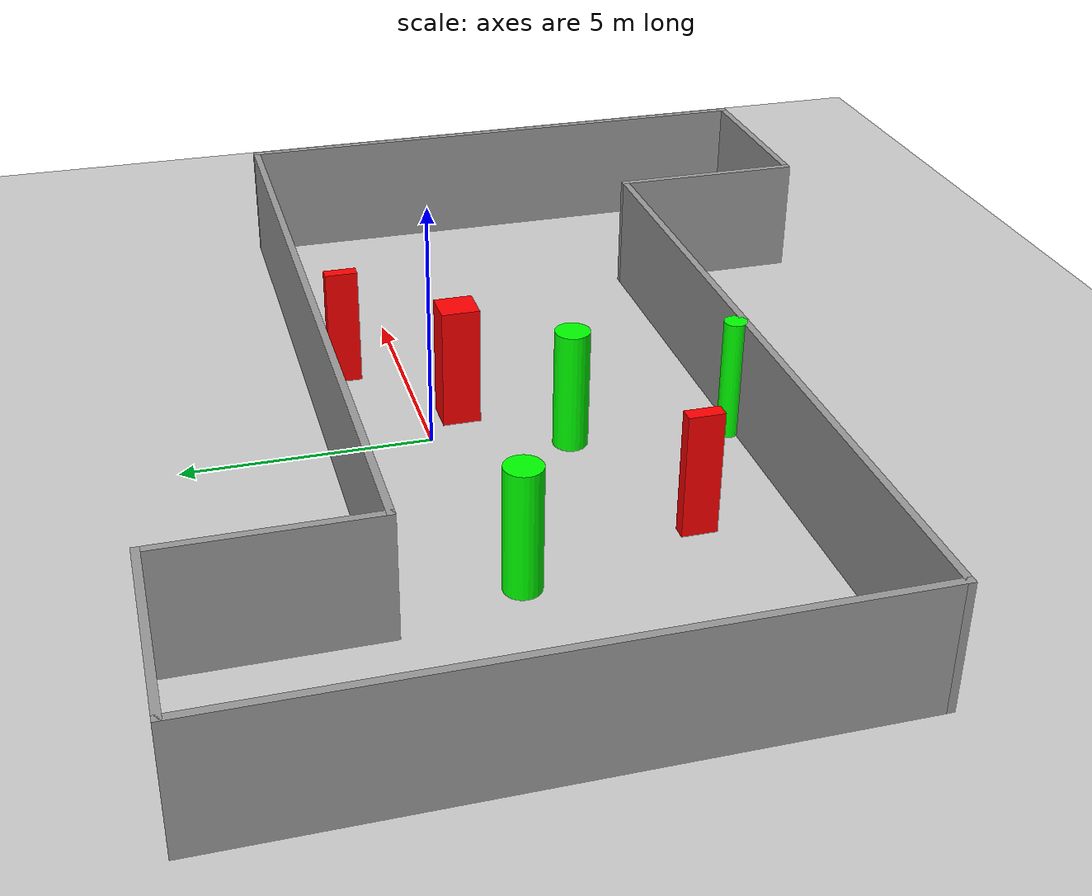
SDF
<sdf version="1.7">
 <world name="default">
  <light name="sun" type="directional">
   <pose>0 0 10 0 -0 0</pose>
   <diffuse>0.8 0.8 0.8 1</diffuse>
   <specular>0.2 0.2 0.2 1</specular>
   <attenuation>
    <range>1000</range>
    <constant>0.9</constant>
    <linear>0.01</linear>
    <quadratic>0.001</quadratic>
   </attenuation>
   <direction>-0.5 0.1 -0.9</direction>
   <spot><inner_angle>0</inner_angle><outer_angle>0</outer_angle><falloff>0</falloff></spot>
  </light>
  <model name="ground_plane">
   <static>1</static>
   <link name="link">
    <collision name="collision">
     <geometry><plane><normal>0 0 1</normal><size>100 100</size></plane></geometry>
     <surface>
      <contact><collide_bitmask>65535</collide_bitmask></contact>
      <friction><ode><mu>100</mu><mu2>50</mu2></ode></friction>
     </surface>
    </collision>
    <visual name="visual">
     <cast_shadows>0</cast_shadows>
     <geometry><plane><normal>0 0 1</normal><size>100 100</size></plane></geometry>
     <material>
      <script><uri>file://media/materials/scripts/gazebo.material</uri><name>Gazebo/Grey</name></script>
     </material>
    </visual>
   </link>
  </model>
  <gravity>0 0 -9.8</gravity>
  <magnetic_field>6e-06 2.3e-05 -4.2e-05</magnetic_field>
  <atmosphere type="adiabatic"/>
  <physics type="ode">
   <max_step_size>0.001</max_step_size>
   <real_time_factor>1</real_time_factor>
   <real_time_update_rate>1000</real_time_update_rate>
  </physics>
  <scene><ambient>0.4 0.4 0.4 1</ambient><background>0.7 0.7 0.7 1</background><shadows>1</shadows></scene>
  <spherical_coordinates>
   <surface_model>EARTH_WGS84</surface_model>
   <latitude_deg>0</latitude_deg>
   <longitude_deg>0</longitude_deg>
   <elevation>0</elevation>
   <heading_deg>0</heading_deg>
  </spherical_coordinates>
  <model name="my_base_walls">
   <link name="Wall_13">
    <collision name="Wall_13_Collision">
     <geometry><box><size>12.15 0.15 2.5</size></box></geometry>
     <pose>0 0 1.25 0 -0 0</pose>
    </collision>
    <visual name="Wall_13_Visual">
     <pose>0 0 1.25 0 -0 0</pose>
     <geometry><box><size>12.15 0.15 2.5</size></box></geometry>
     <material>
      <script><uri>file://media/materials/scripts/gazebo.material</uri><name>Gazebo/Grey</name></script>
      <ambient>1 1 1 1</ambient>
     </material>
     <meta><layer>0</layer></meta>
    </visual>
    <pose>10 -2 0 0 -0 1.5708</pose>
   </link>
   <link name="Wall_15">
    <collision name="Wall_15_Collision">
     <geometry><box><size>16.15 0.15 2.5</size></box></geometry>
     <pose>0 0 1.25 0 -0 0</pose>
    </collision>
    <visual name="Wall_15_Visual">
     <pose>0 0 1.25 0 -0 0</pose>
     <geometry><box><size>16.15 0.15 2.5</size></box></geometry>
     <material>
      <script><uri>file://media/materials/scripts/gazebo.material</uri><name>Gazebo/Grey</name></script>
      <ambient>1 1 1 1</ambient>
     </material>
     <meta><layer>0</layer></meta>
    </visual>
    <pose>2 4 0 0 -0 3.14159</pose>
   </link>
   <link name="Wall_17">
    <collision name="Wall_17_Collision">
     <geometry><box><size>4.15 0.15 2.5</size></box></geometry>
     <pose>0 0 1.25 0 -0 0</pose>
    </collision>
    <visual name="Wall_17_Visual">
     <pose>0 0 1.25 0 -0 0</pose>
     <geometry><box><size>4.15 0.15 2.5</size></box></geometry>
     <material>
      <script><uri>file://media/materials/scripts/gazebo.material</uri><name>Gazebo/Grey</name></script>
      <ambient>1 1 1 1</ambient>
     </material>
     <meta><layer>0</layer></meta>
    </visual>
    <pose>6 -6 0 0 -0 -1.5708</pose>
   </link>
   <link name="Wall_19">
    <collision name="Wall_19_Collision">
     <geometry><box><size>12.15 0.15 2.5</size></box></geometry>
     <pose>0 0 1.25 0 -0 0</pose>
    </collision>
    <visual name="Wall_19_Visual">
     <pose>0 0 1.25 0 -0 0</pose>
     <geometry><box><size>12.15 0.15 2.5</size></box></geometry>
     <material>
      <script><uri>file://media/materials/scripts/gazebo.material</uri><name>Gazebo/Grey</name></script>
      <ambient>1 1 1 1</ambient>
     </material>
     <meta><layer>0</layer></meta>
    </visual>
    <pose>-10 2 0 0 -0 1.5708</pose>
   </link>
   <link name="Wall_21">
    <collision name="Wall_21_Collision">
     <geometry><box><size>4.15 0.15 2.5</size></box></geometry>
     <pose>0 0 1.25 0 -0 0</pose>
    </collision>
    <visual name="Wall_21_Visual">
     <pose>0 0 1.25 0 -0 0</pose>
     <geometry><box><size>4.15 0.15 2.5</size></box></geometry>
     <material>
      <script><uri>file://media/materials/scripts/gazebo.material</uri><name>Gazebo/Grey</name></script>
      <ambient>1 1 1 1</ambient>
     </material>
     <meta><layer>0</layer></meta>
    </visual>
    <pose>-8 8 0 0 -0 0</pose>
   </link>
   <link name="Wall_23">
    <collision name="Wall_23_Collision">
     <geometry><box><size>4.15 0.15 2.5</size></box></geometry>
     <pose>0 0 1.25 0 -0 0</pose>
    </collision>
    <visual name="Wall_23_Visual">
     <pose>0 0 1.25 0 -0 0</pose>
     <geometry><box><size>4.15 0.15 2.5</size></box></geometry>
     <material>
      <script><uri>file://media/materials/scripts/gazebo.material</uri><name>Gazebo/Grey</name></script>
      <ambient>1 1 1 1</ambient>
     </material>
     <meta><layer>0</layer></meta>
    </visual>
    <pose>-6 6 0 0 -0 -1.5708</pose>
   </link>
   <link name="Wall_25">
    <collision name="Wall_25_Collision">
     <geometry><box><size>4.15 0.15 2.5</size></box></geometry>
     <pose>0 0 1.25 0 -0 0</pose>
    </collision>
    <visual name="Wall_25_Visual">
     <pose>0 0 1.25 0 -0 0</pose>
     <geometry><box><size>4.15 0.15 2.5</size></box></geometry>
     <material>
      <script><uri>file://media/materials/scripts/gazebo.material</uri><name>Gazebo/Grey</name></script>
      <ambient>1 1 1 1</ambient>
     </material>
     <meta><layer>0</layer></meta>
    </visual>
    <pose>8 -8 0 0 -0 0</pose>
   </link>
   <link name="Wall_9">
    <collision name="Wall_9_Collision">
     <geometry><box><size>16.15 0.15 2.5</size></box></geometry>
     <pose>0 0 1.25 0 -0 0</pose>
    </collision>
    <visual name="Wall_9_Visual">
     <pose>0 0 1.25 0 -0 0</pose>
     <geometry><box><size>16.15 0.15 2.5</size></box></geometry>
     <material>
      <script><uri>file://media/materials/scripts/gazebo.material</uri><name>Gazebo/Grey</name></script>
      <ambient>1 1 1 1</ambient>
     </material>
     <meta><layer>0</layer></meta>
    </visual>
    <pose>-2 -4 0 0 -0 3.14159</pose>
   </link>
   <static>1</static>
   <pose>-0 -2 0 0 -0 0</pose>
  </model>
  <model name="cylinder1">
   <static>1</static>
   <link name="link">
    <inertial>
     <mass>1</mass>
     <inertia><ixx>0.5</ixx><ixy>0</ixy><ixz>0</ixz><iyy>0.5</iyy><iyz>0</iyz><izz>1</izz></inertia>
    </inertial>
    <collision name="collision">
     <geometry><cylinder><radius>0.36278769786888454</radius><length>2.5</length></cylinder></geometry>
    </collision>
    <visual name="visual">
     <geometry><cylinder><radius>0.36278769786888454</radius><length>2.5</length></cylinder></geometry>
     <material>
      <ambient>0 1 0 1</ambient>
      <diffuse>0 1 0 1</diffuse>
      <specular>0.1 0.1 0.1 1</specular>
      <emissive>0 0 0 0</emissive>
     </material>
    </visual>
   </link>
   <pose>-5.215206454562142 -0.4140963735138037 1.25 0 0 0</pose>
  </model>
  <model name="cylinder2">
   <static>1</static>
   <link name="link">
    <inertial>
     <mass>1</mass>
     <inertia><ixx>0.5</ixx><ixy>0</ixy><ixz>0</ixz><iyy>0.5</iyy><iyz>0</iyz><izz>1</izz></inertia>
    </inertial>
    <collision name="collision">
     <geometry><cylinder><radius>0.3515348773333252</radius><length>2.5</length></cylinder></geometry>
    </collision>
    <visual name="visual">
     <geometry><cylinder><radius>0.3515348773333252</radius><length>2.5</length></cylinder></geometry>
     <material>
      <ambient>0 1 0 1</ambient>
      <diffuse>0 1 0 1</diffuse>
      <specular>0.1 0.1 0.1 1</specular>
      <emissive>0 0 0 0</emissive>
     </material>
    </visual>
   </link>
   <pose>-0.7835238163182758 -2.633877371561538 1.25 0 0 0</pose>
  </model>
  <model name="cylinder3">
   <static>1</static>
   <link name="link">
    <inertial>
     <mass>1</mass>
     <inertia><ixx>0.5</ixx><ixy>0</ixy><ixz>0</ixz><iyy>0.5</iyy><iyz>0</iyz><izz>1</izz></inertia>
    </inertial>
    <collision name="collision">
     <geometry><cylinder><radius>0.23045875147595762</radius><length>2.5</length></cylinder></geometry>
    </collision>
    <visual name="visual">
     <geometry><cylinder><radius>0.23045875147595762</radius><length>2.5</length></cylinder></geometry>
     <material>
      <ambient>0 1 0 1</ambient>
      <diffuse>0 1 0 1</diffuse>
      <specular>0.1 0.1 0.1 1</specular>
      <emissive>0 0 0 0</emissive>
     </material>
    </visual>
   </link>
   <pose>-1.2086406735091817 -5.815087400682612 1.25 0 0 0</pose>
  </model>
  <model name="box1">
   <static>1</static>
   <link name="link">
    <inertial>
     <mass>1</mass>
     <inertia><ixx>0.083</ixx><ixy>0</ixy><ixz>0</ixz><iyy>0.083</iyy><iyz>0</iyz><izz>0.083</izz></inertia>
    </inertial>
    <collision name="collision">
     <geometry><box><size>0.7113879266320335 0.7770465930552042 2.5</size></box></geometry>
    </collision>
    <visual name="visual">
     <geometry><box><size>0.7113879266320335 0.7770465930552042 2.5</size></box></geometry>
     <material>
      <ambient>1 0 0 1</ambient>
      <diffuse>1 0 0 1</diffuse>
      <specular>0.1 0.1 0.1 1</specular>
      <emissive>0 0 0 0</emissive>
     </material>
    </visual>
    <sensor name="my_contact" type="contact">
     <contact><collision>box_collision</collision><topic>__default_topic__</topic></contact>
    </sensor>
   </link>
   <pose>0.8442089543326308 -0.7343270153462695 1.25 0 0 0</pose>
  </model>
  <model name="box2">
   <static>1</static>
   <link name="link">
    <inertial>
     <mass>1</mass>
     <inertia><ixx>0.083</ixx><ixy>0</ixy><ixz>0</ixz><iyy>0.083</iyy><iyz>0</iyz><izz>0.083</izz></inertia>
    </inertial>
    <collision name="collision">
     <geometry><box><size>0.25340548095326404 0.67168663021061 2.5</size></box></geometry>
    </collision>
    <visual name="visual">
     <geometry><box><size>0.25340548095326404 0.67168663021061 2.5</size></box></geometry>
     <material>
      <ambient>1 0 0 1</ambient>
      <diffuse>1 0 0 1</diffuse>
      <specular>0.1 0.1 0.1 1</specular>
      <emissive>0 0 0 0</emissive>
     </material>
    </visual>
    <sensor name="my_contact" type="contact">
     <contact><collision>box_collision</collision><topic>__default_topic__</topic></contact>
    </sensor>
   </link>
   <pose>2.9454305603957422 1.2247448831642611 1.25 0 0 0</pose>
  </model>
  <model name="box3">
   <static>1</static>
   <link name="link">
    <inertial>
     <mass>1</mass>
     <inertia><ixx>0.083</ixx><ixy>0</ixy><ixz>0</ixz><iyy>0.083</iyy><iyz>0</iyz><izz>0.083</izz></inertia>
    </inertial>
    <collision name="collision">
     <geometry><box><size>0.28264846096143287 0.6966472431133882 2.5</size></box></geometry>
    </collision>
    <visual name="visual">
     <geometry><box><size>0.28264846096143287 0.6966472431133882 2.5</size></box></geometry>
     <material>
      <ambient>1 0 0 1</ambient>
      <diffuse>1 0 0 1</diffuse>
      <specular>0.1 0.1 0.1 1</specular>
      <emissive>0 0 0 0</emissive>
     </material>
    </visual>
    <sensor name="my_contact" type="contact">
     <contact><collision>box_collision</collision><topic>__default_topic__</topic></contact>
    </sensor>
   </link>
   <pose>-4.332630947758226 -3.965867453610782 1.25 0 0 0</pose>
  </model>
 </world>
</sdf>
